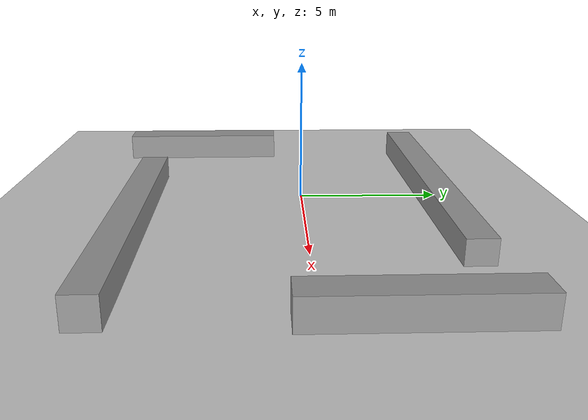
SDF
<sdf version="1.7">
 <world name="default">
  <light name="sun" type="directional">
   <pose>0 0 10 0 -0 0</pose>
   <diffuse>0.8 0.8 0.8 1</diffuse>
   <specular>0.2 0.2 0.2 1</specular>
   <attenuation>
    <range>1000</range>
    <constant>0.9</constant>
    <linear>0.01</linear>
    <quadratic>0.001</quadratic>
   </attenuation>
   <direction>-0.5 0.1 -0.9</direction>
   <spot><inner_angle>0</inner_angle><outer_angle>0</outer_angle><falloff>0</falloff></spot>
  </light>
  <model name="ground_plane">
   <static>1</static>
   <link name="link">
    <collision name="collision">
     <geometry><plane><normal>0 0 1</normal><size>100 100</size></plane></geometry>
     <surface>
      <contact><collide_bitmask>65535</collide_bitmask></contact>
      <friction><ode><mu>100</mu><mu2>50</mu2></ode></friction>
     </surface>
    </collision>
    <visual name="visual">
     <cast_shadows>0</cast_shadows>
     <geometry><plane><normal>0 0 1</normal><size>100 100</size></plane></geometry>
     <material>
      <script><uri>file://media/materials/scripts/gazebo.material</uri><name>Gazebo/Grey</name></script>
     </material>
    </visual>
   </link>
  </model>
  <gravity>0 0 -9.8</gravity>
  <magnetic_field>6e-06 2.3e-05 -4.2e-05</magnetic_field>
  <atmosphere type="adiabatic"/>
  <physics type="ode">
   <max_step_size>0.001</max_step_size>
   <real_time_factor>1</real_time_factor>
   <real_time_update_rate>1000</real_time_update_rate>
  </physics>
  <scene><ambient>0.4 0.4 0.4 1</ambient><background>0.7 0.7 0.7 1</background><shadows>1</shadows></scene>
  <spherical_coordinates>
   <surface_model>EARTH_WGS84</surface_model>
   <latitude_deg>0</latitude_deg>
   <longitude_deg>0</longitude_deg>
   <elevation>0</elevation>
   <heading_deg>0</heading_deg>
  </spherical_coordinates>
  <model name="unit_box">
   <pose>0.14022 4.8228 0.42529 0.000152 0.01313 0.01157</pose>
   <link name="link">
    <inertial>
     <mass>1</mass>
     <inertia>
      <ixx>0.166667</ixx>
      <ixy>0</ixy>
      <ixz>0</ixz>
      <iyy>0.166667</iyy>
      <iyz>0</iyz>
      <izz>0.166667</izz>
     </inertia>
    </inertial>
    <collision name="collision"><geometry><box><size>11.4218 1 1</size></box></geometry></collision>
    <visual name="visual">
     <geometry><box><size>11.4218 1 1</size></box></geometry>
     <material>
      <script><name>Gazebo/Grey</name><uri>file://media/materials/scripts/gazebo.material</uri></script>
     </material>
    </visual>
   </link>
  </model>
  <model name="unit_box_0">
   <pose>-5.61636 -4.13195 0.49374 0 0.001968 -1.57059</pose>
   <link name="link">
    <inertial>
     <mass>1</mass>
     <inertia>
      <ixx>0.166667</ixx>
      <ixy>0</ixy>
      <ixz>0</ixz>
      <iyy>0.166667</iyy>
      <iyz>0</iyz>
      <izz>0.166667</izz>
     </inertia>
    </inertial>
    <collision name="collision"><geometry><box><size>6.36565 1 1</size></box></geometry></collision>
    <visual name="visual">
     <geometry><box><size>6.36565 1 1</size></box></geometry>
     <material>
      <script><name>Gazebo/Grey</name><uri>file://media/materials/scripts/gazebo.material</uri></script>
     </material>
    </visual>
   </link>
  </model>
  <model name="unit_box_clone">
   <pose>3.32738 -5.74247 0.425291 -0.000152 -0.01313 0.01157</pose>
   <link name="link">
    <inertial>
     <mass>1</mass>
     <inertia>
      <ixx>0.166667</ixx>
      <ixy>0</ixy>
      <ixz>0</ixz>
      <iyy>0.166667</iyy>
      <iyz>0</iyz>
      <izz>0.166667</izz>
     </inertia>
    </inertial>
    <collision name="collision"><geometry><box><size>11.4218 1 1</size></box></geometry></collision>
    <visual name="visual">
     <geometry><box><size>11.4218 1 1</size></box></geometry>
     <material>
      <script><name>Gazebo/Grey</name><uri>file://media/materials/scripts/gazebo.material</uri></script>
     </material>
    </visual>
   </link>
  </model>
  <model name="unit_box_0_clone">
   <pose>8.72018 2.48401 0.49374 0 0.001968 -1.57059</pose>
   <link name="link">
    <inertial>
     <mass>1</mass>
     <inertia>
      <ixx>0.166667</ixx>
      <ixy>0</ixy>
      <ixz>0</ixz>
      <iyy>0.166667</iyy>
      <iyz>0</iyz>
      <izz>0.166667</izz>
     </inertia>
    </inertial>
    <collision name="collision"><geometry><box><size>6.36565 1 1</size></box></geometry></collision>
    <visual name="visual">
     <geometry><box><size>6.36565 1 1</size></box></geometry>
     <material>
      <script><name>Gazebo/Grey</name><uri>file://media/materials/scripts/gazebo.material</uri></script>
     </material>
    </visual>
   </link>
  </model>
 </world>
</sdf>
